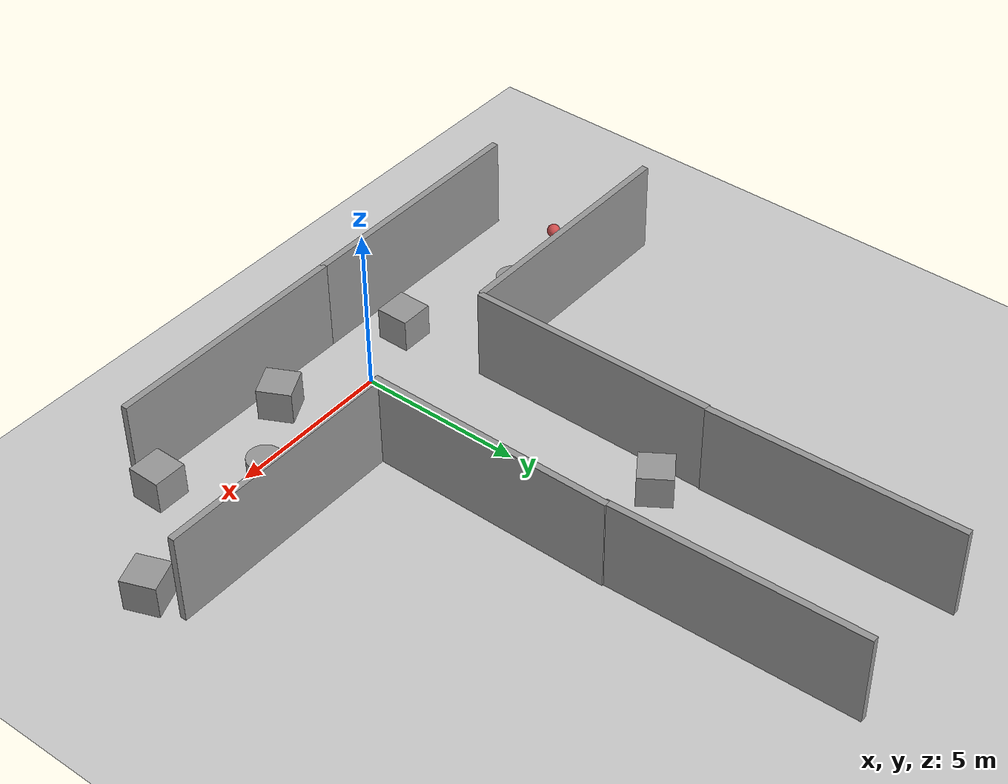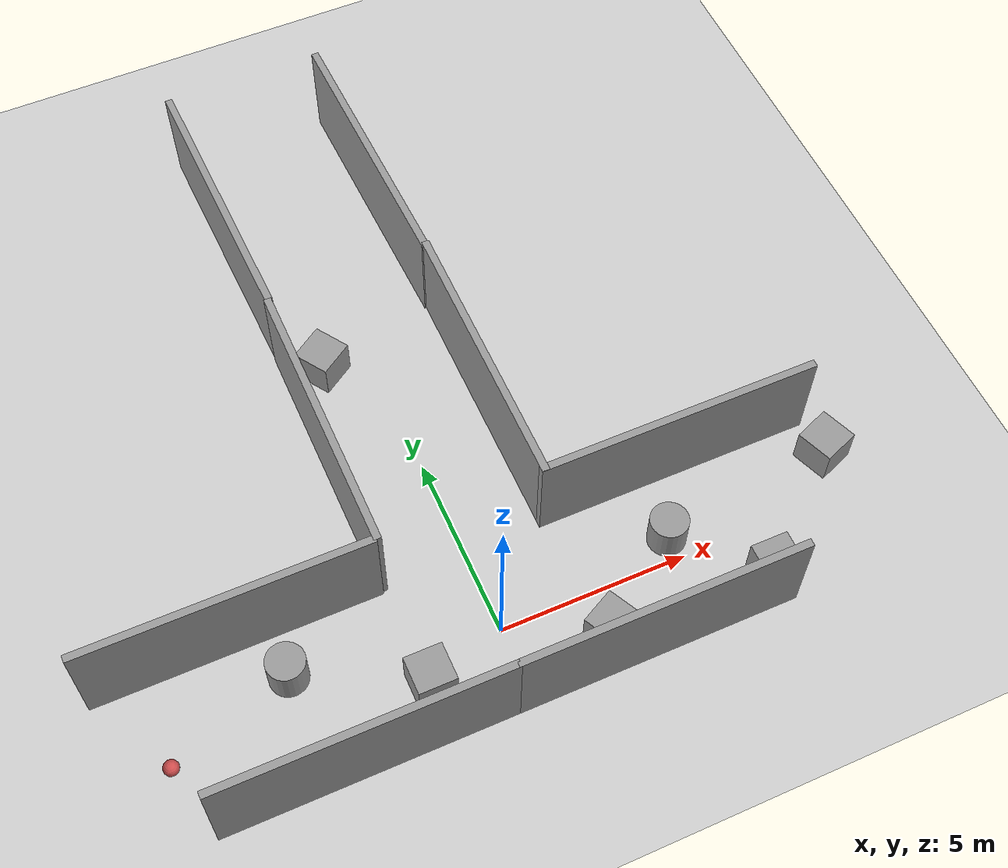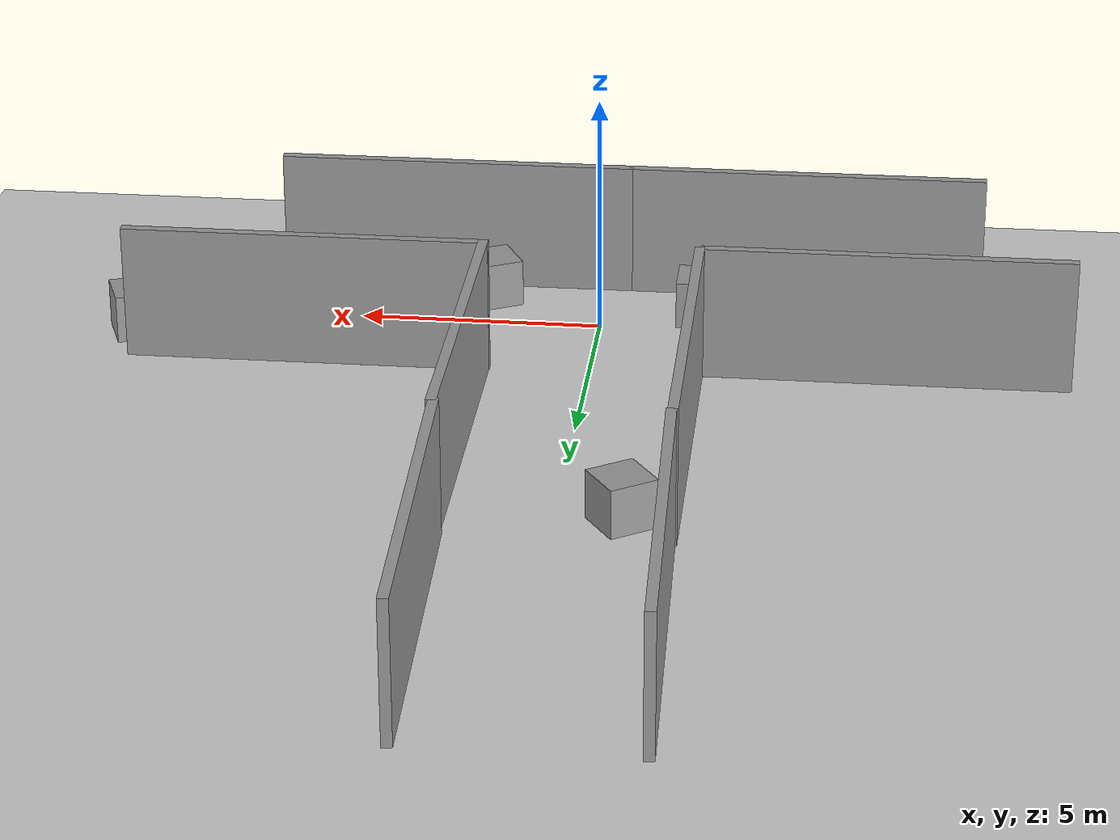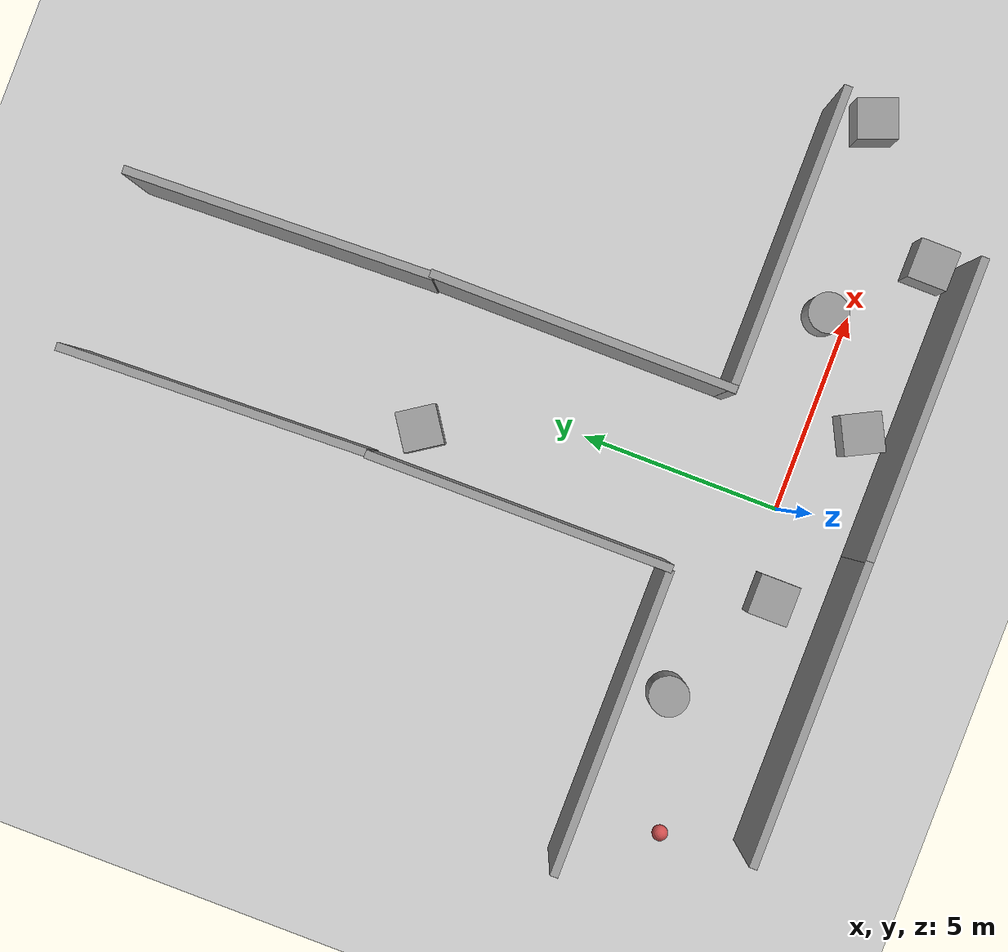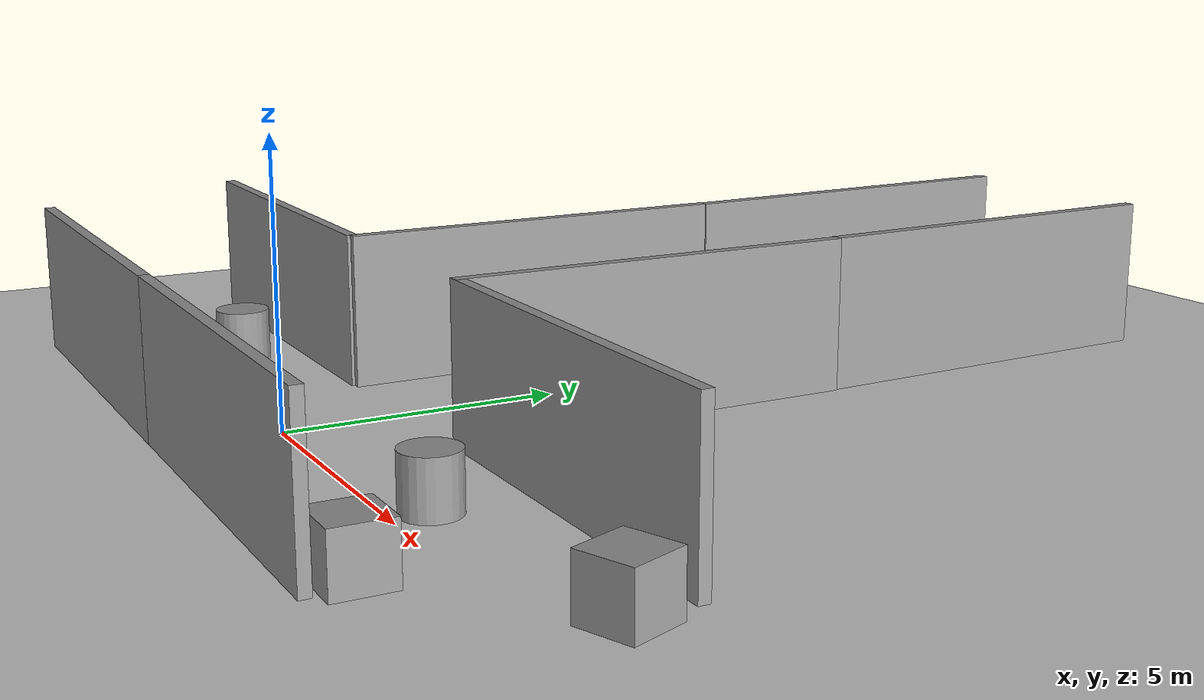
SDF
<sdf version="1.6">
 <world name="default">
  <light name="sun" type="directional">
   <pose>0 0 10 0 -0 0</pose>
   <diffuse>0.8 0.8 0.8 1</diffuse>
   <specular>0.2 0.2 0.2 1</specular>
   <attenuation>
    <range>1000</range>
    <constant>0.9</constant>
    <linear>0.01</linear>
    <quadratic>0.001</quadratic>
   </attenuation>
   <direction>-0.5 0.1 -0.9</direction>
  </light>
  <model name="ground_plane">
   <static>1</static>
   <link name="link">
    <collision name="collision">
     <geometry><plane><normal>0 0 1</normal><size>100 100</size></plane></geometry>
     <surface><friction><ode><mu>100</mu><mu2>50</mu2></ode></friction></surface>
    </collision>
    <visual name="visual">
     <cast_shadows>0</cast_shadows>
     <geometry><plane><normal>0 0 1</normal><size>100 100</size></plane></geometry>
     <material>
      <script><uri>file://media/materials/scripts/gazebo.material</uri><name>Gazebo/Grey</name></script>
     </material>
    </visual>
    <velocity_decay><linear>0</linear><angular>0</angular></velocity_decay>
   </link>
  </model>
  <physics name="default_physics" default="0" type="ode">
   <max_step_size>0.001</max_step_size>
   <real_time_factor>1</real_time_factor>
   <real_time_update_rate>1000</real_time_update_rate>
  </physics>
  <scene><ambient>0.4 0.4 0.4 1</ambient><background>0.7 0.7 0.7 1</background><shadows>1</shadows></scene>
  <spherical_coordinates>
   <surface_model>EARTH_WGS84</surface_model>
   <latitude_deg>0</latitude_deg>
   <longitude_deg>0</longitude_deg>
   <elevation>0</elevation>
   <heading_deg>0</heading_deg>
  </spherical_coordinates>
  <model name="grey_wall">
   <static>1</static>
   <link name="link">
    <pose>0 0 1.4 0 -0 0</pose>
    <collision name="collision"><geometry><box><size>7.5 0.2 2.8</size></box></geometry></collision>
    <visual name="visual">
     <cast_shadows>0</cast_shadows>
     <geometry><box><size>7.5 0.2 2.8</size></box></geometry>
     <material>
      <script>
       <uri>model://grey_wall/materials/scripts</uri>
       <uri>model://grey_wall/materials/textures</uri>
       <name>vrc/grey_wall</name>
      </script>
     </material>
    </visual>
    <velocity_decay><linear>0</linear><angular>0</angular></velocity_decay>
   </link>
   <pose>-2.22979 5.88104 0 0 0 -1.5665</pose>
  </model>
  <model name="grey_wall_0">
   <static>1</static>
   <link name="link">
    <pose>0 0 1.4 0 -0 0</pose>
    <collision name="collision"><geometry><box><size>7.5 0.2 2.8</size></box></geometry></collision>
    <visual name="visual">
     <cast_shadows>0</cast_shadows>
     <geometry><box><size>7.5 0.2 2.8</size></box></geometry>
     <material>
      <script>
       <uri>model://grey_wall/materials/scripts</uri>
       <uri>model://grey_wall/materials/textures</uri>
       <name>vrc/grey_wall</name>
      </script>
     </material>
    </visual>
    <velocity_decay><linear>0</linear><angular>0</angular></velocity_decay>
   </link>
   <pose>-4.20398 -2.01379 0 0 -0 0</pose>
  </model>
  <model name="grey_wall_1">
   <static>1</static>
   <link name="link">
    <pose>0 0 1.4 0 -0 0</pose>
    <collision name="collision"><geometry><box><size>7.5 0.2 2.8</size></box></geometry></collision>
    <visual name="visual">
     <cast_shadows>0</cast_shadows>
     <geometry><box><size>7.5 0.2 2.8</size></box></geometry>
     <material>
      <script>
       <uri>model://grey_wall/materials/scripts</uri>
       <uri>model://grey_wall/materials/textures</uri>
       <name>vrc/grey_wall</name>
      </script>
     </material>
    </visual>
    <velocity_decay><linear>0</linear><angular>0</angular></velocity_decay>
   </link>
   <pose>-2.33651 13.349 0 0 0 -1.53854</pose>
  </model>
  <model name="grey_wall_3">
   <static>1</static>
   <link name="link">
    <pose>0 0 1.4 0 -0 0</pose>
    <collision name="collision"><geometry><box><size>7.5 0.2 2.8</size></box></geometry></collision>
    <visual name="visual">
     <cast_shadows>0</cast_shadows>
     <geometry><box><size>7.5 0.2 2.8</size></box></geometry>
     <material>
      <script>
       <uri>model://grey_wall/materials/scripts</uri>
       <uri>model://grey_wall/materials/textures</uri>
       <name>vrc/grey_wall</name>
      </script>
     </material>
    </visual>
    <velocity_decay><linear>0</linear><angular>0</angular></velocity_decay>
   </link>
   <pose>2.13822 5.96148 0.00212 0 0 -1.57102</pose>
  </model>
  <model name="grey_wall_4">
   <static>1</static>
   <link name="link">
    <pose>0 0 1.4 0 -0 0</pose>
    <collision name="collision"><geometry><box><size>7.5 0.2 2.8</size></box></geometry></collision>
    <visual name="visual">
     <cast_shadows>0</cast_shadows>
     <geometry><box><size>7.5 0.2 2.8</size></box></geometry>
     <material>
      <script>
       <uri>model://grey_wall/materials/scripts</uri>
       <uri>model://grey_wall/materials/textures</uri>
       <name>vrc/grey_wall</name>
      </script>
     </material>
    </visual>
    <velocity_decay><linear>0</linear><angular>0</angular></velocity_decay>
   </link>
   <pose>3.23252 -2.01378 0 0 -0 0</pose>
  </model>
  <model name="grey_wall_5">
   <static>1</static>
   <link name="link">
    <pose>0 0 1.4 0 -0 0</pose>
    <collision name="collision"><geometry><box><size>7.5 0.2 2.8</size></box></geometry></collision>
    <visual name="visual">
     <cast_shadows>0</cast_shadows>
     <geometry><box><size>7.5 0.2 2.8</size></box></geometry>
     <material>
      <script>
       <uri>model://grey_wall/materials/scripts</uri>
       <uri>model://grey_wall/materials/textures</uri>
       <name>vrc/grey_wall</name>
      </script>
     </material>
    </visual>
    <velocity_decay><linear>0</linear><angular>0</angular></velocity_decay>
   </link>
   <pose>-5.99366 2.17051 0 0 -0 0</pose>
  </model>
  <model name="grey_wall_6">
   <static>1</static>
   <link name="link">
    <pose>0 0 1.4 0 -0 0</pose>
    <collision name="collision"><geometry><box><size>7.5 0.2 2.8</size></box></geometry></collision>
    <visual name="visual">
     <cast_shadows>0</cast_shadows>
     <geometry><box><size>7.5 0.2 2.8</size></box></geometry>
     <material>
      <script>
       <uri>model://grey_wall/materials/scripts</uri>
       <uri>model://grey_wall/materials/textures</uri>
       <name>vrc/grey_wall</name>
      </script>
     </material>
    </visual>
    <velocity_decay><linear>0</linear><angular>0</angular></velocity_decay>
   </link>
   <pose>5.78394 2.30025 0 0 -0 0</pose>
  </model>
  <gravity>0 0 -9.8</gravity>
  <magnetic_field>6e-06 2.3e-05 -4.2e-05</magnetic_field>
  <atmosphere type="adiabatic"/>
  <model name="unit_box_0">
   <pose>-2.09115 -0.600005 0.499995 0 -1e-05 -2e-06</pose>
   <link name="link">
    <inertial>
     <mass>1</mass>
     <inertia>
      <ixx>0.166667</ixx>
      <ixy>0</ixy>
      <ixz>0</ixz>
      <iyy>0.166667</iyy>
      <iyz>0</iyz>
      <izz>0.166667</izz>
     </inertia>
    </inertial>
    <collision name="collision"><geometry><box><size>1 1 1</size></box></geometry></collision>
    <visual name="visual">
     <geometry><box><size>1 1 1</size></box></geometry>
     <material>
      <script><name>Gazebo/Grey</name><uri>file://media/materials/scripts/gazebo.material</uri></script>
     </material>
    </visual>
   </link>
  </model>
  <model name="unit_box_1">
   <pose>2.39656 -1.16294 0.5 0 -0 0.472633</pose>
   <link name="link">
    <inertial>
     <mass>1</mass>
     <inertia>
      <ixx>0.166667</ixx>
      <ixy>0</ixy>
      <ixz>0</ixz>
      <iyy>0.166667</iyy>
      <iyz>0</iyz>
      <izz>0.166667</izz>
     </inertia>
    </inertial>
    <collision name="collision"><geometry><box><size>1 1 1</size></box></geometry></collision>
    <visual name="visual">
     <geometry><box><size>1 1 1</size></box></geometry>
     <material>
      <script><name>Gazebo/Grey</name><uri>file://media/materials/scripts/gazebo.material</uri></script>
     </material>
    </visual>
   </link>
  </model>
  <model name="unit_box_2">
   <pose>9.57464 1.18706 0.499995 -1e-05 -0 0.368709</pose>
   <link name="link">
    <inertial>
     <mass>1</mass>
     <inertia>
      <ixx>0.166667</ixx>
      <ixy>0</ixy>
      <ixz>0</ixz>
      <iyy>0.166667</iyy>
      <iyz>0</iyz>
      <izz>0.166667</izz>
     </inertia>
    </inertial>
    <collision name="collision"><geometry><box><size>1 1 1</size></box></geometry></collision>
    <visual name="visual">
     <geometry><box><size>1 1 1</size></box></geometry>
     <material>
      <script><name>Gazebo/Grey</name><uri>file://media/materials/scripts/gazebo.material</uri></script>
     </material>
    </visual>
   </link>
  </model>
  <model name="unit_sphere_0_0">
   <link name="link">
    <pose>0 0 -0.378537 0 -0 0</pose>
    <inertial>
     <mass>1</mass>
     <inertia><ixx>0.1</ixx><ixy>0</ixy><ixz>0</ixz><iyy>0.1</iyy><iyz>0</iyz><izz>0.1</izz></inertia>
    </inertial>
    <visual name="visual">
     <geometry><sphere><radius>0.2</radius></sphere></geometry>
     <material>
      <script><name>Gazebo/Grey</name><uri>file://media/materials/scripts/gazebo.material</uri></script>
      <ambient>0.8 0.3 0.3 1</ambient>
      <diffuse>0.7 0.7 0.7 1</diffuse>
      <specular>0.01 0.01 0.01 1</specular>
      <emissive>0 0 0 1</emissive>
      <shader type="vertex"><normal_map>__default__</normal_map></shader>
     </material>
    </visual>
    <collision name="collision">
     <geometry><sphere><radius>0.2</radius></sphere></geometry>
     <surface>
      <friction>
       <ode><mu>1</mu><mu2>1</mu2><fdir1>0 0 0</fdir1><slip1>0</slip1><slip2>0</slip2></ode>
       <torsional>
        <coefficient>1</coefficient>
        <patch_radius>0</patch_radius>
        <surface_radius>0</surface_radius>
        <use_patch_radius>1</use_patch_radius>
        <ode><slip>0</slip></ode>
       </torsional>
      </friction>
      <bounce><restitution_coefficient>0</restitution_coefficient><threshold>1e+06</threshold></bounce>
      <contact>
       <collide_without_contact>0</collide_without_contact>
       <collide_without_contact_bitmask>1</collide_without_contact_bitmask>
       <collide_bitmask>1</collide_bitmask>
       <ode>
        <soft_cfm>0</soft_cfm>
        <soft_erp>0.2</soft_erp>
        <kp>1e+13</kp>
        <kd>1</kd>
        <max_vel>0.01</max_vel>
        <min_depth>0</min_depth>
       </ode>
       <bullet>
        <split_impulse>1</split_impulse>
        <split_impulse_penetration_threshold>-0.01</split_impulse_penetration_threshold>
        <soft_cfm>0</soft_cfm>
        <soft_erp>0.2</soft_erp>
        <kp>1e+13</kp>
        <kd>1</kd>
       </bullet>
      </contact>
     </surface>
    </collision>
   </link>
   <static>0</static>
   <pose>-8.40016 -0.140932 0.578537 0 -0 0</pose>
  </model>
  <model name="unit_cylinder_0">
   <pose>4.81109 0.631235 0.499994 -3e-06 -2e-06 0</pose>
   <link name="link">
    <inertial>
     <mass>1</mass>
     <inertia><ixx>0.145833</ixx><ixy>0</ixy><ixz>0</ixz><iyy>0.145833</iyy><iyz>0</iyz><izz>0.125</izz></inertia>
    </inertial>
    <collision name="collision">
     <geometry><cylinder><radius>0.5</radius><length>1</length></cylinder></geometry>
    </collision>
    <visual name="visual">
     <geometry><cylinder><radius>0.5</radius><length>1</length></cylinder></geometry>
     <material>
      <script><name>Gazebo/Grey</name><uri>file://media/materials/scripts/gazebo.material</uri></script>
     </material>
    </visual>
   </link>
  </model>
  <model name="unit_box_3">
   <pose>6.78572 -1.31681 0.499995 -1e-05 -0 -0.004436</pose>
   <link name="link">
    <inertial>
     <mass>1</mass>
     <inertia>
      <ixx>0.166667</ixx>
      <ixy>0</ixy>
      <ixz>0</ixz>
      <iyy>0.166667</iyy>
      <iyz>0</iyz>
      <izz>0.166667</izz>
     </inertia>
    </inertial>
    <collision name="collision"><geometry><box><size>1 1 1</size></box></geometry></collision>
    <visual name="visual">
     <geometry><box><size>1 1 1</size></box></geometry>
     <material>
      <script><name>Gazebo/Grey</name><uri>file://media/materials/scripts/gazebo.material</uri></script>
     </material>
    </visual>
   </link>
  </model>
  <model name="unit_cylinder_1">
   <pose>-5.13375 0.934836 0.499994 -3e-06 -2e-06 0</pose>
   <link name="link">
    <inertial>
     <mass>1</mass>
     <inertia><ixx>0.145833</ixx><ixy>0</ixy><ixz>0</ixz><iyy>0.145833</iyy><iyz>0</iyz><izz>0.125</izz></inertia>
    </inertial>
    <collision name="collision">
     <geometry><cylinder><radius>0.5</radius><length>1</length></cylinder></geometry>
    </collision>
    <visual name="visual">
     <geometry><cylinder><radius>0.5</radius><length>1</length></cylinder></geometry>
     <material>
      <script><name>Gazebo/Grey</name><uri>file://media/materials/scripts/gazebo.material</uri></script>
     </material>
    </visual>
   </link>
  </model>
  <model name="unit_box_4">
   <pose>-1.2567 8.79878 0.5 0 -0 0.588067</pose>
   <link name="link">
    <inertial>
     <mass>1</mass>
     <inertia>
      <ixx>0.166667</ixx>
      <ixy>0</ixy>
      <ixz>0</ixz>
      <iyy>0.166667</iyy>
      <iyz>0</iyz>
      <izz>0.166667</izz>
     </inertia>
    </inertial>
    <collision name="collision"><geometry><box><size>1 1 1</size></box></geometry></collision>
    <visual name="visual">
     <geometry><box><size>1 1 1</size></box></geometry>
     <material>
      <script><name>Gazebo/Grey</name><uri>file://media/materials/scripts/gazebo.material</uri></script>
     </material>
    </visual>
   </link>
  </model>
  <model name="grey_wall_1_clone">
   <static>1</static>
   <link name="link">
    <pose>0 0 1.4 0 -0 0</pose>
    <collision name="collision"><geometry><box><size>7.5 0.2 2.8</size></box></geometry></collision>
    <visual name="visual">
     <cast_shadows>0</cast_shadows>
     <geometry><box><size>7.5 0.2 2.8</size></box></geometry>
     <material>
      <script>
       <uri>model://grey_wall/materials/scripts</uri>
       <uri>model://grey_wall/materials/textures</uri>
       <name>vrc/grey_wall</name>
      </script>
     </material>
    </visual>
    <velocity_decay><linear>0</linear><angular>0</angular></velocity_decay>
   </link>
   <pose>1.97892 13.3617 0 0 0 -1.53854</pose>
  </model>
 </world>
</sdf>
